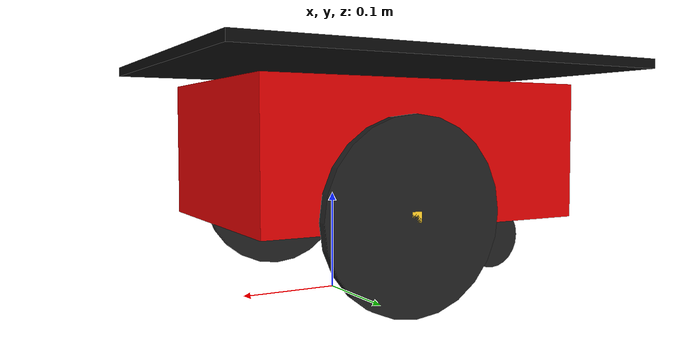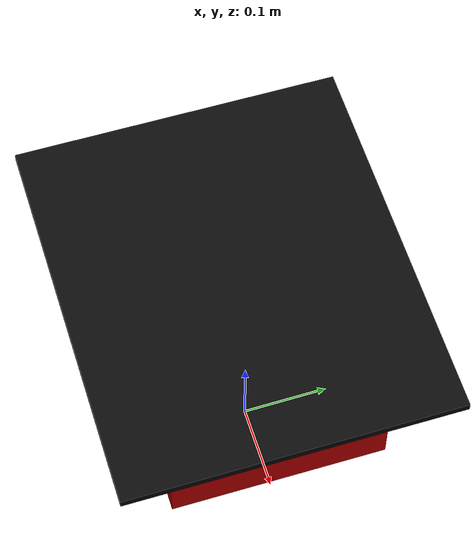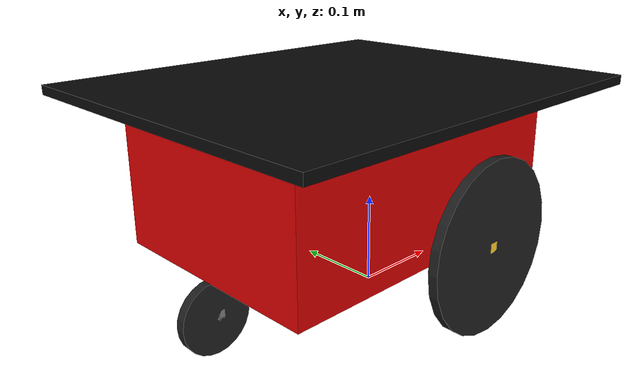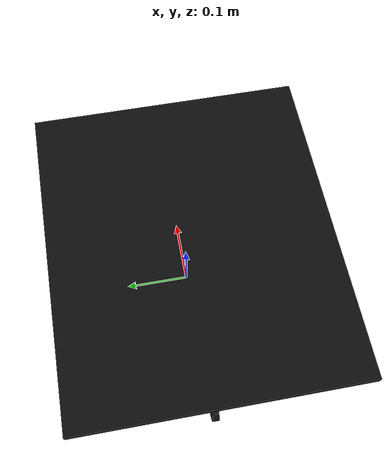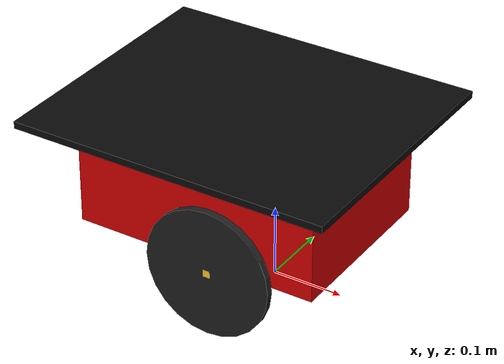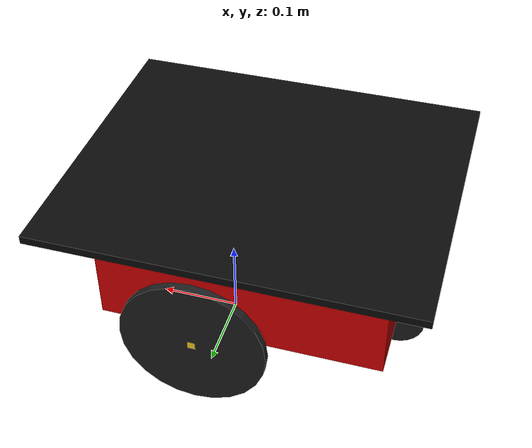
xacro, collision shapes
<?xml version="1.0"?>
<robot xmlns:xacro="http://www.ros.org/wiki/xacro" >

    <xacro:include filename="inertial_macros.xacro"/>
	<xacro:include filename="$(find pioneer3dx_description)/urdf/robot_wheel.xacro" />

    <material name="white">
        <color rgba="1 1 1 1" />
    </material>

    <material name="white2">
        <color rgba="1 1 1 0.8" />
    </material>

    <material name="grey">
        <color rgba="0.7 0.7 0.7 1" />
    </material>

    <material name="orange">
        <color rgba="1 0.3 0.1 1"/>
    </material>

    <material name="blue">
        <color rgba="0.2 0.2 1 1"/>
    </material>

    <material name="black">
        <color rgba="0 0 0 1"/>
    </material>

    <material name="red">
        <color rgba="1 0.2 0.2 1" />
    </material>

    <material name="ChassisRed">
		<color rgba="0.851 0.0 0.0 1.0"/>
	</material>

	<material name="SonarYellow">
		<color rgba="0.715 0.583 0.210 1.0"/>
	</material>

	<material name="WheelBlack">
		<color rgba="0.117 0.117 0.117 1.0"/>
	</material>

	<material name="HubcapYellow">
		<color rgba="1.0 0.811 0.151 1.0"/>
	</material>

	<material name="TopBlack">
		<color rgba="0.038 0.038 0.038 1.0"/>
	</material>

	<!-- chassis -->
	<link name="base_link">
		<inertial>
			<mass value="3.5" />
			<origin xyz="-0.05 0 0" />
			<inertia ixx="1" ixy="0" ixz="0" iyy="1" iyz="0" izz="1" />
		</inertial>

		<visual name="base_link">
			<origin xyz="-0.045 0 0.148" rpy="0 0 0" />
			<geometry name="pioneer_geom">
				<mesh filename="file://$(find pioneer3dx_description)/meshes/chassis.stl" />
			</geometry>
			<material name="ChassisRed">
				<color rgba="0.851 0.0 0.0 1.0" />
			</material>
		</visual>

		<collision>
			<origin xyz="-0.045 0 0.145" rpy="0 0 0" />
			<geometry>
				<box size="0.35 0.25 0.14" />
			</geometry>
		</collision>
	</link>

    <!-- base footprint link -->

    <joint name="base_footprint_joint" type="fixed">
        <parent link="base_link"/>
        <child link="base_footprint"/>
        <origin xyz="0 0 0" rpy="0 0 0"/>
    </joint>

    <link name="base_footprint">
    </link>

	<!-- top_plate -->
	<link name="top_plate">
		<inertial>
			<mass value="0.01" />
			<origin xyz="0 0 0" />
			<inertia ixx="1" ixy="0" ixz="0" iyy="1" iyz="0" izz="1" />
		</inertial>

		<visual name="base_visual">
			<origin xyz="0 0 0" rpy="0 0 0" />
			<geometry name="top_geom">
				<mesh filename="file://$(find pioneer3dx_description)/meshes/top.stl" />
			</geometry>

			<material name="TopBlack">
				<color rgba="0.038 0.038 0.038 1.0" />
			</material>
		</visual>

		<collision>
			<origin xyz="0.0 0 0" rpy="0 0 0" />
			<geometry name="pioneer_geom">
				<box size="0.45 0.38 0.01" />
			</geometry>
		</collision>
	</link>

	<joint name="base_top_joint" type="fixed">
		<origin xyz="-0.045 0 0.234" rpy="0 0 0" />
		<parent link="base_link" />
		<child link="top_plate" />
	</joint>

	<!-- swivel -->
	<link name="swivel">
		<inertial>
			<mass value="0.1" />
			<origin xyz="0 0 0" />
			<inertia ixx="0.01" ixy="0" ixz="0" iyy="0.01" iyz="0" izz="0.01" />
		</inertial>

		<visual name="base_visual">
			<origin xyz="0 0 0" rpy="0 0 0" />
			<geometry name="pioneer_geom">
				<mesh filename="file://$(find pioneer3dx_description)/meshes/swivel.stl" />
			</geometry>
			<material name="swivel">
				<color rgba="0.5 0.5 0.5 1" />
			</material>
		</visual>

		<collision>
			<origin xyz="0 0 0" rpy="0 0 0" />
			<geometry>
				<box size="0.01 0.01 0.01" />
			</geometry>
		</collision>
	</link>

	<joint name="base_swivel_joint" type="fixed">
		<origin xyz="-0.185 0 0.055" rpy="0 0 0" />
		<axis xyz="0 0 1" />
		<anchor xyz="0 0 0" />
		<limit effort="100" velocity="100" k_velocity="0" />
		<joint_properties damping="0.0" friction="0.0" />
		<parent link="base_link" />
		<child link="swivel" />
	</joint>

	<!-- center_hubcap -->
	<link name="center_hubcap">
		<inertial>
			<mass value="0.01" />
			<origin xyz="0 0 0" />
			<inertia ixx="0.012411765597" ixy="-0.000711733678" ixz="0.00050272983"
				iyy="0.015218160428" iyz="-0.000004273467" izz="0.011763977943" />
		</inertial>

		<visual name="base_visual">
			<origin xyz="0 0 0" rpy="0 0 0" />
			<geometry name="pioneer_geom">
				<mesh filename="file://$(find pioneer3dx_description)/meshes/center_hubcap.stl" />
			</geometry>
			<material name="swivel">
				<color rgba="0.5 0.5 0.5 1" />
			</material>
		</visual>

		<collision>
			<origin xyz="0 0 0" rpy="0 0 0" />
			<geometry>
				<box size="0.01 0.01 0.01" />
			</geometry>
		</collision>
	</link>

	<joint name="swivel_hubcap_joint" type="fixed">
		<origin xyz="-0.026 0 -0.016" rpy="0 0 0" />
		<axis xyz="0 1 0" />
		<anchor xyz="0 0 0" />
		<limit effort="100" velocity="100" k_velocity="0" />
		<joint_properties damping="0.0" friction="0.0" />
		<parent link="swivel" />
		<child link="center_hubcap" />
	</joint>

	<!-- center_wheel -->
	<link name="center_wheel">
		<inertial>
			<mass value="0.1" />
			<origin xyz="0 0 0" />
			<inertia ixx="0.012411765597" ixy="-0.000711733678" ixz="0.00050272983"
				iyy="0.015218160428" iyz="-0.000004273467" izz="0.011763977943" />
		</inertial>

		<visual name="base_visual">
			<origin xyz="0 0 0" rpy="0 0 0" />
			<geometry name="pioneer_geom">
				<mesh filename="file://$(find pioneer3dx_description)/meshes/center_wheel.stl" />
			</geometry>
			<material name="WheelBlack">
				<color rgba="0.117 0.117 0.117 1" />
			</material>
		</visual>

		<collision>
			<origin xyz="0 0 0" rpy="${-3.1415927/2.0} 0 0" />
			<geometry>
				<cylinder radius="0.0375" length="0.01" />
			</geometry>
		</collision>
	</link>

	<joint name="center_wheel_joint" type="fixed">
		<origin xyz="-0.0035 0 -0.001" rpy="0 0 0" />
		<parent link="center_hubcap" />
		<child link="center_wheel" />
	</joint>

	<!-- rodas principais -->
	<xacro:p3dx_wheel
		suffix="left"
		parent="base_link"
		reflect="1.0"/>

	<xacro:p3dx_wheel
		suffix="right"
		parent="base_link"
		reflect="-1.0"/>

	<!-- front_sonar -->
	<link name="front_sonar">
		<inertial>
			<mass value="0.0001" />
			<origin xyz="0 0 0" />
			<inertia ixx="1" ixy="0" ixz="0" iyy="1" iyz="0" izz="1" />
		</inertial>

		<visual name="front_sonar_vis">
			<origin rpy="0 0 0" xyz="0 0 0" />
			<geometry name="pioneer_geom">
				<mesh filename="file://$(find pioneer3dx_description)/meshes/front_sonar.stl" />
			</geometry>
			<material name="SonarYellow">
				<color rgba="0.715 0.583 0.210 1.0" />
			</material>
		</visual>

		<collision>
			<origin rpy="0 0 0" xyz="0 0 0" />
			<geometry>
				<box size="0.01 0.01 0.01" />
			</geometry>
		</collision>
	</link>

	<joint name="base_front_joint" type="fixed">
		<origin rpy="0 0 0" xyz="0.109 0 0.209" />
		<parent link="base_link" />
		<child link="front_sonar" />
	</joint>

</robot>

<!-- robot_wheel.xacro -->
<robot xmlns:xacro="http://ros.org/wiki/xacro">

  <!-- properties (constants) -->
  <xacro:property name="M_PI" value="3.14159" />

  <!-- right/left hubcap + wheel -->
  <xacro:macro name="p3dx_wheel" params="suffix parent reflect">

    <!-- hubcap -->
    <link name="p3dx_${suffix}_hubcap">
      <inertial>
        <mass value="0.01" />
        <origin xyz="0 0 0" />
        <inertia ixx="0.012411765597" ixy="0" ixz="0"
                 iyy="0.015218160428" iyz="0"
                 izz="0.011763977943" />
      </inertial>

      <visual name="base_visual">
        <origin xyz="0 0 0" rpy="0 0 0" />
        <geometry name="pioneer_geom">
          <mesh filename="file://$(find pioneer3dx_description)/meshes/${suffix}_hubcap.stl" />
        </geometry>
        <material name="HubcapYellow">
          <color rgba="1.0 0.811 0.151 1.0" />
        </material>
      </visual>

      <collision>
        <origin xyz="0 0 0" rpy="0 0 0" />
        <geometry>
          <box size="0.01 0.01 0.01" />
        </geometry>
      </collision>
    </link>

    <joint name="base_${suffix}_hubcap_joint" type="fixed">
      <axis xyz="0 1 0" />
      <origin xyz="0 ${reflect*0.158} 0.091" rpy="0 0 0" />
      <parent link="base_link" />
      <child link="p3dx_${suffix}_hubcap" />
    </joint>

    <!-- wheel -->
    <link name="p3dx_${suffix}_wheel">
      <inertial>
        <mass value="0.5" />
        <origin xyz="0 0 0" />
        <inertia ixx="0.012411765597" ixy="0" ixz="0"
                 iyy="0.015218160428" iyz="0"
                 izz="0.011763977943" />
      </inertial>

      <visual name="base_visual">
        <origin xyz="0 0 0" rpy="0 0 0" />
        <geometry name="pioneer_geom">
          <mesh filename="file://$(find pioneer3dx_description)/meshes/${suffix}_wheel.stl" />
        </geometry>
        <material name="WheelBlack">
          <color rgba="0.117 0.117 0.117 1" />
        </material>
      </visual>

      <collision>
        <origin xyz="0 0 0" rpy="${-3.1415927/2} 0 0" />
        <geometry>
          <cylinder radius="0.09" length="0.01" />
        </geometry>
      </collision>
    </link>

    <joint name="base_${suffix}_wheel_joint" type="continuous">
      <origin xyz="0 0 0" rpy="0 0 0" />
      <parent link="p3dx_${suffix}_hubcap" />
      <child link="p3dx_${suffix}_wheel" />
      <axis xyz="0 1 0"/>
    </joint>

    <!-- gazebo elements -->
    <transmission name="${parent}_${suffix}_wheel_trans">
      <type>pr2_mechanism_model/SimpleTransmission</type>
      <joint name="base_${suffix}_wheel_joint" />
      <actuator name="base_${suffix}_wheel_motor">
        <hardwareInterface>EffortJointInterface</hardwareInterface>
        <mechanicalReduction>${reflect * 624/35 * 80/19}</mechanicalReduction>
      </actuator>
    </transmission>

    <gazebo reference="p3dx_${suffix}_hubcap">
      <material>Gazebo/Yellow</material>
    </gazebo>

    <gazebo reference="p3dx_${suffix}_wheel">
      <material>Gazebo/Black</material>
      <mu1>0.5</mu1>
      <mu2>50.0</mu2>
      <kp>1000.0</kp>
      <kd>1.0</kd>
    </gazebo>

  </xacro:macro>

</robot>
